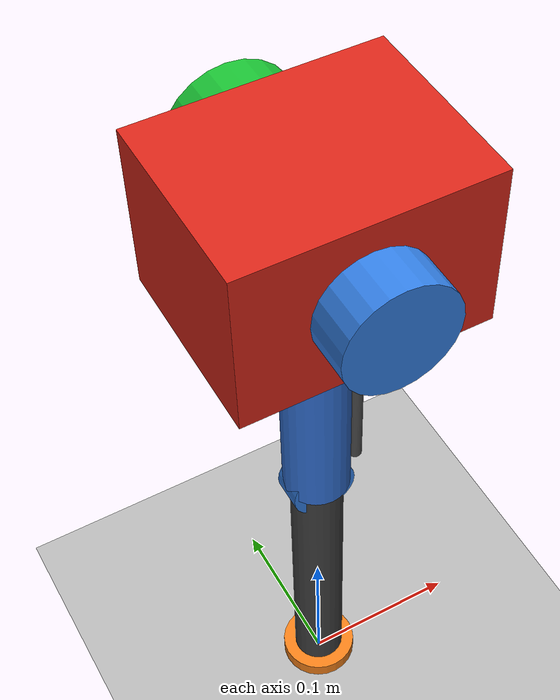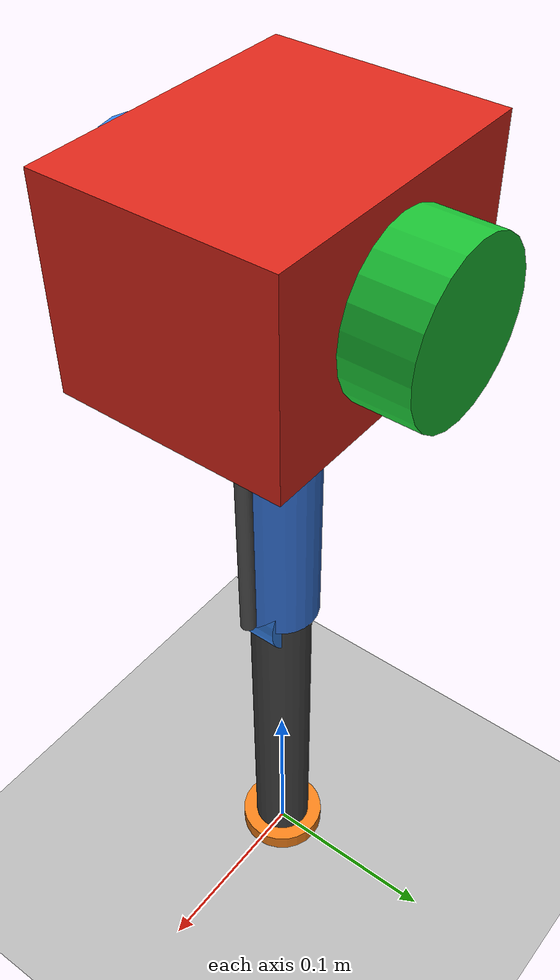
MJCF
<mujoco model="monoped_bldc_2dof">

  <compiler angle="radian" inertiafromgeom="true"/>

  <option timestep="0.001"
          gravity="0 0 -9.81"
          iterations="100"
          solver="Newton"
          integrator="implicitfast"/>

  <default>
    <joint damping="1.0" armature="0.02"/>
    <geom contype="0" conaffinity="0" condim="3"
          friction="1.2 0.005 0.0001"
          solimp="0.99 0.999 0.001" solref="0.02 1"/>
    <motor ctrllimited="true" ctrlrange="-1 1"/>
  </default>

  <asset>
    <texture name="grid" type="2d" builtin="checker"
             width="512" height="512"
             rgb1="0.82 0.82 0.82" rgb2="0.60 0.60 0.60"/>
    <material name="grid_mat"   texture="grid" texrepeat="4 4" reflectance="0.2"/>
    <material name="body_mat"   rgba="0.2 0.45 0.85 1"/>
    <material name="joint_mat"  rgba="0.95 0.50 0.10 1"/>
    <material name="lower_mat"  rgba="0.25 0.25 0.25 1"/>
    <material name="rail_mat"   rgba="0.55 0.55 0.55 0.8"/>
    <material name="motor1_mat" rgba="0.1  0.75 0.2  1"/>
    <material name="motor2_mat" rgba="0.2  0.5  0.9  1"/>
    <material name="chain_mat"  rgba="0.3  0.3  0.3  0.9"/>
    <material name="pelvis_mat" rgba="0.85 0.15 0.10 1"/>
    <material name="foot_mat"   rgba="0.95 0.50 0.10 1"/>
  </asset>

  <worldbody>

    <geom name="floor" type="plane" size="10 10 0.1"
          pos="0 0 0" material="grid_mat"
          contype="1" conaffinity="1"/>

    <light directional="true" diffuse="0.8 0.8 0.8"
           specular="0.2 0.2 0.2" pos="0 0 6" dir="0 0 -1"/>
    <light directional="true" diffuse="0.3 0.3 0.3"
           pos="3 3 4" dir="-1 -1 -1"/>

    <!-- Vertical guide rail (visual only) -->
    <geom name="rail" type="cylinder" size="0.014 0.180"
          pos="0 0 0.220" material="rail_mat"/>

    <!--
      PELVIS (red) — slides ONLY vertically.
      Rest height: 2 × L = 2 × 0.20 = 0.40 m  (leg fully straight, foot on floor).
    -->
    <body name="pelvis" pos="0 0 0.40">
      <joint name="slide_z" type="slide"
             axis="0 0 1" range="-0.34 2.00"
             damping="0.8" stiffness="0.0"/>

      <geom name="pelvis_geom" type="box"
            size="0.07 0.055 0.048"
            material="pelvis_mat"/>
      <site name="pelvis_site" pos="0 0 0" size="0.012"/>

      <!--
        MOTOR 1 — BLDC, direct drive on hip.
        Mounted on pelvis, green disc.
      -->
      <geom name="motor1_disc" type="cylinder"
            size="0.038 0.018" pos="0  0.068 0" euler="1.5708 0 0"
            material="motor1_mat"/>

      <!--
        MOTOR 2 — BLDC, chain drive on knee (connect_hinge).
        Mounted coaxially on pelvis, blue disc, offset in Y.
      -->
      <geom name="motor2_disc" type="cylinder"
            size="0.032 0.014" pos="0 -0.068 0" euler="1.5708 0 0"
            material="motor2_mat"/>

      <!--
        UPPER LINK — driven by Motor 1 (hip hinge, direct drive).
        L = 0.20 m, hangs straight down at hip = 0.
      -->
      <body name="upper_link" pos="0 0 0">
        <joint name="hip" type="hinge"
               axis="0 1 0" limited="false"
               damping="1.5" stiffness="0.0"/>

        <geom name="hip_sphere" type="sphere" size="0.028"
              material="joint_mat"/>
        <geom name="upper_link_geom" type="cylinder"
              size="0.020 0.100" pos="0 0 -0.100"
              material="body_mat"/>

        <!-- Chain runs along the side of upper_link to the knee sprocket -->
        <geom name="chain" type="cylinder"
              size="0.004 0.096" pos="0.026 0 -0.096"
              material="chain_mat"/>

        <body name="lower_link" pos="0 0 -0.20">
          <joint name="knee" type="hinge"
                 axis="0 1 0" limited="false"
                 damping="0.5" stiffness="0.0"/>

          <!-- Knee sprocket (chain terminates here) -->
          <geom name="knee_sprocket" type="cylinder"
                size="0.020 0.010" pos="0 0 0" euler="1.5708 0 0"
                material="motor2_mat"/>
          <geom name="lower_link_geom" type="cylinder"
                size="0.016 0.100" pos="0 0 -0.100"
                material="lower_mat"/>

          <!--
            FOOT — contact-enabled sphere at link tip.
            contype/conaffinity = 1 so it collides with the floor.
            Cylinder (flat disc) keeps contact point well-defined.
          -->
          <geom name="foot" type="cylinder"
                size="0.024 0.005" pos="0 0 -0.195"
                contype="1" conaffinity="1"
                friction="1.5 0.01 0.001"
                material="foot_mat"/>

          <site name="rod_tip" pos="0 0 -0.20" size="0.012"/>
        </body>
      </body>
    </body>

  </worldbody>

  <!--
    ACTUATORS
      ctrl[0]  hip_motor   — Motor 1, direct drive,  gear=55 Nm
      ctrl[1]  knee_motor  — Motor 2, chain drive,   gear=45 Nm
  -->
  <actuator>
    <motor name="hip_motor"  joint="hip"  gear="55"
           ctrllimited="true" ctrlrange="-1 1"/>
    <motor name="knee_motor" joint="knee" gear="45"
           ctrllimited="true" ctrlrange="-1 1"/>
  </actuator>

  <sensor>
    <accelerometer name="imu_accel"    site="pelvis_site"/>
    <jointpos       name="hip_pos"     joint="hip"/>
    <jointpos       name="knee_pos"    joint="knee"/>
    <jointpos       name="slide_z_pos" joint="slide_z"/>
    <jointvel       name="hip_vel"     joint="hip"/>
    <jointvel       name="knee_vel"    joint="knee"/>
    <jointvel       name="slide_z_vel" joint="slide_z"/>
    <framepos       name="rod_tip_pos" objtype="site" objname="rod_tip"/>
    <framepos       name="pelvis_pos"  objtype="site" objname="pelvis_site"/>
  </sensor>

</mujoco>
